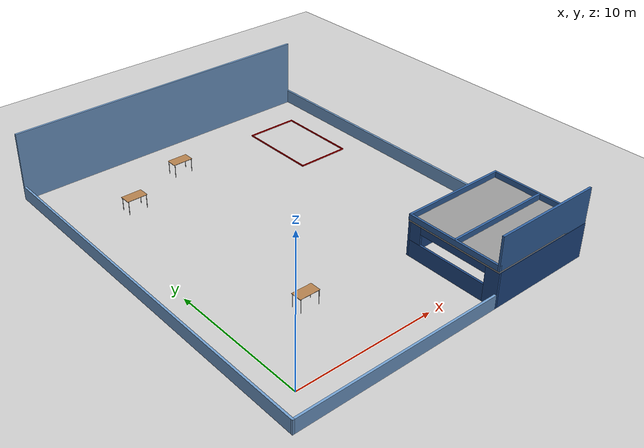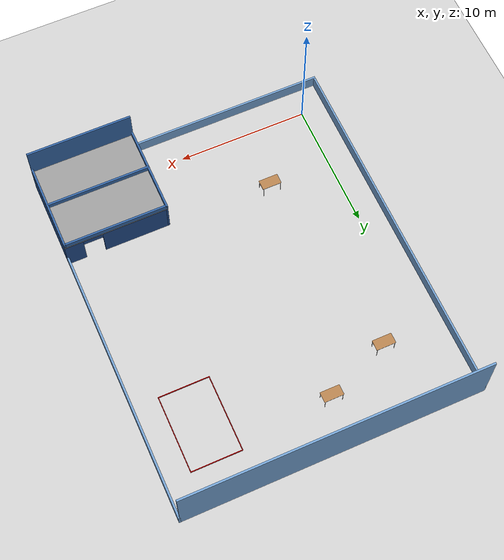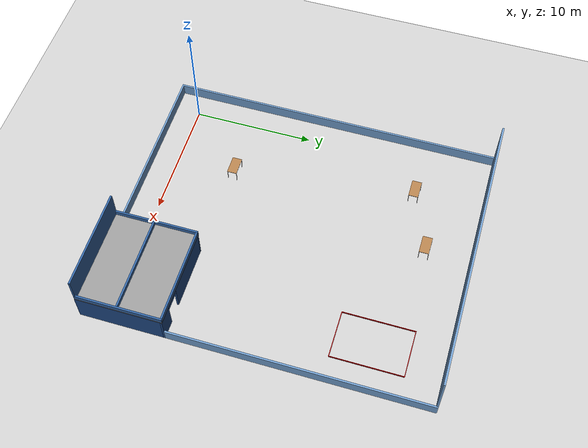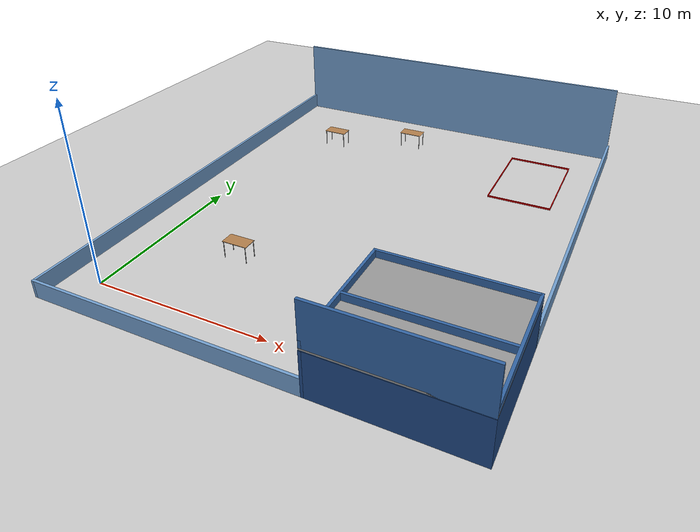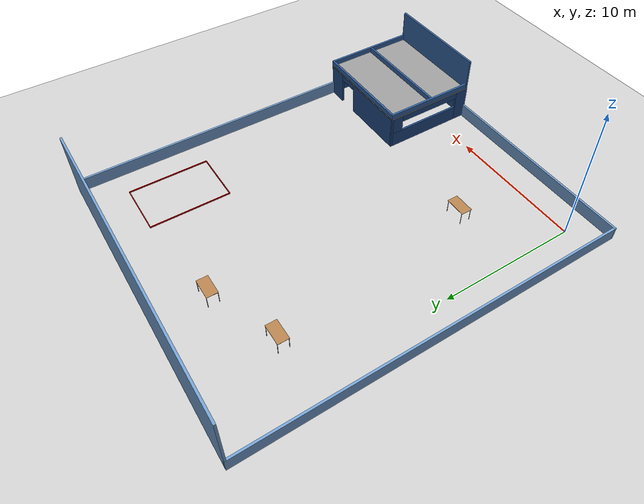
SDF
<sdf version="1.7">
 <world name="lps_sim">
  <light name="sun" type="directional">
   <pose>0 0 10 0 -0 0</pose>
   <diffuse>0.8 0.8 0.8 1</diffuse>
   <specular>0.2 0.2 0.2 1</specular>
   <attenuation>
    <range>1000</range>
    <constant>0.9</constant>
    <linear>0.01</linear>
    <quadratic>0.001</quadratic>
   </attenuation>
   <direction>-0.5 0.1 -0.9</direction>
   <spot><inner_angle>0</inner_angle><outer_angle>0</outer_angle><falloff>0</falloff></spot>
  </light>
  <model name="ground_plane">
   <static>1</static>
   <link name="link">
    <collision name="collision">
     <geometry><plane><normal>0 0 1</normal><size>100 100</size></plane></geometry>
     <surface>
      <contact><collide_bitmask>65535</collide_bitmask></contact>
      <friction><ode><mu>100</mu><mu2>50</mu2></ode></friction>
     </surface>
    </collision>
    <visual name="visual">
     <cast_shadows>0</cast_shadows>
     <geometry><plane><normal>0 0 1</normal><size>100 100</size></plane></geometry>
     <material>
      <script><uri>file://media/materials/scripts/gazebo.material</uri><name>Gazebo/Grey</name></script>
     </material>
    </visual>
   </link>
  </model>
  <gravity>0 0 -9.8</gravity>
  <magnetic_field>6e-06 2.3e-05 -4.2e-05</magnetic_field>
  <atmosphere type="adiabatic"/>
  <physics type="ode">
   <max_step_size>0.001</max_step_size>
   <real_time_factor>1</real_time_factor>
   <real_time_update_rate>1000</real_time_update_rate>
  </physics>
  <scene><ambient>0.4 0.4 0.4 1</ambient><background>0.7 0.7 0.7 1</background><shadows>1</shadows></scene>
  <spherical_coordinates>
   <surface_model>EARTH_WGS84</surface_model>
   <latitude_deg>0</latitude_deg>
   <longitude_deg>0</longitude_deg>
   <elevation>0</elevation>
   <heading_deg>0</heading_deg>
  </spherical_coordinates>
  <model name="masterarbeit">
   <pose>9.5 11.8 0 0 -0 0</pose>
   <link name="Floor_5">
    <collision name="Floor_5_Collision">
     <geometry><box><size>8.00045 7.00101 0.1</size></box></geometry>
     <pose>0 0 0.05 0 -0 0</pose>
    </collision>
    <visual name="Floor_5_Visual">
     <pose>0 0 0.05 0 -0 0</pose>
     <geometry><box><size>8.00045 7.00101 0.1</size></box></geometry>
     <material>
      <script><uri>file://media/materials/scripts/gazebo.material</uri><name>Gazebo/Grey</name></script>
      <ambient>0.933333 0.933333 0.92549 1</ambient>
     </material>
     <meta><layer>1</layer></meta>
    </visual>
    <pose>7.54978 -10.4693 2.5 0 -0 0</pose>
   </link>
   <link name="Wall_41">
    <collision name="Wall_41_Collision">
     <geometry><box><size>8 0.15 2.5</size></box></geometry>
     <pose>0 0 1.25 0 -0 0</pose>
    </collision>
    <visual name="Wall_41_Visual">
     <pose>0 0 1.25 0 -0 0</pose>
     <geometry><box><size>8 0.15 2.5</size></box></geometry>
     <material>
      <script><uri>file://media/materials/scripts/gazebo.material</uri><name>Gazebo/Grey</name></script>
      <ambient>0.12549 0.290196 0.529412 1</ambient>
     </material>
     <meta><layer>0</layer></meta>
    </visual>
    <pose>7.55 -13.925 0 0 -0 3.14154</pose>
   </link>
   <link name="Wall_42">
    <pose>3.625 -10.5 0 0 -0 1.57073</pose>
    <visual name="Wall_42_Visual_0">
     <pose>-2.99393 0 1.25 0 -0 0</pose>
     <geometry><box><size>1.01214 0.15 2.5</size></box></geometry>
     <material>
      <script><uri>file://media/materials/scripts/gazebo.material</uri><name>Gazebo/Grey</name></script>
      <ambient>0.12549 0.290196 0.529412 1</ambient>
     </material>
     <meta><layer>0</layer></meta>
    </visual>
    <collision name="Wall_42_Collision_0">
     <geometry><box><size>1.01214 0.15 2.5</size></box></geometry>
     <pose>-2.99393 0 1.25 0 -0 0</pose>
    </collision>
    <visual name="Wall_42_Visual_1">
     <pose>0.506069 0 0.6 0 -0 0</pose>
     <geometry><box><size>5.98786 0.15 1.2</size></box></geometry>
     <material>
      <script><uri>file://media/materials/scripts/gazebo.material</uri><name>Gazebo/Grey</name></script>
      <ambient>0.12549 0.290196 0.529412 1</ambient>
     </material>
     <meta><layer>0</layer></meta>
    </visual>
    <collision name="Wall_42_Collision_1">
     <geometry><box><size>5.98786 0.15 1.2</size></box></geometry>
     <pose>0.506069 0 0.6 0 -0 0</pose>
    </collision>
    <visual name="Wall_42_Visual_2">
     <pose>3.00607 0 1.85 0 -0 0</pose>
     <geometry><box><size>0.987862 0.15 1.3</size></box></geometry>
     <material>
      <script><uri>file://media/materials/scripts/gazebo.material</uri><name>Gazebo/Grey</name></script>
      <ambient>0.12549 0.290196 0.529412 1</ambient>
     </material>
     <meta><layer>0</layer></meta>
    </visual>
    <collision name="Wall_42_Collision_2">
     <geometry><box><size>0.987862 0.15 1.3</size></box></geometry>
     <pose>3.00607 0 1.85 0 -0 0</pose>
    </collision>
    <visual name="Wall_42_Visual_3">
     <pose>0.012138 0 2.25 0 -0 0</pose>
     <geometry><box><size>5 0.15 0.5</size></box></geometry>
     <material>
      <script><uri>file://media/materials/scripts/gazebo.material</uri><name>Gazebo/Grey</name></script>
      <ambient>0.12549 0.290196 0.529412 1</ambient>
     </material>
     <meta><layer>0</layer></meta>
    </visual>
    <collision name="Wall_42_Collision_3">
     <geometry><box><size>5 0.15 0.5</size></box></geometry>
     <pose>0.012138 0 2.25 0 -0 0</pose>
    </collision>
   </link>
   <link name="Wall_43">
    <pose>7.55 -7.075 0 0 -0 5.1e-05</pose>
    <visual name="Wall_43_Visual_0">
     <pose>-1.46715 0 1.25 0 -0 0</pose>
     <geometry><box><size>5.0657 0.15 2.5</size></box></geometry>
     <material>
      <script><uri>file://media/materials/scripts/gazebo.material</uri><name>Gazebo/Grey</name></script>
      <ambient>0.12549 0.290196 0.529412 1</ambient>
     </material>
     <meta><layer>0</layer></meta>
    </visual>
    <collision name="Wall_43_Collision_0">
     <geometry><box><size>5.0657 0.15 2.5</size></box></geometry>
     <pose>-1.46715 0 1.25 0 -0 0</pose>
    </collision>
    <visual name="Wall_43_Visual_1">
     <pose>3.28285 0 1.25 0 -0 0</pose>
     <geometry><box><size>1.4343 0.15 2.5</size></box></geometry>
     <material>
      <script><uri>file://media/materials/scripts/gazebo.material</uri><name>Gazebo/Grey</name></script>
      <ambient>0.12549 0.290196 0.529412 1</ambient>
     </material>
     <meta><layer>0</layer></meta>
    </visual>
    <collision name="Wall_43_Collision_1">
     <geometry><box><size>1.4343 0.15 2.5</size></box></geometry>
     <pose>3.28285 0 1.25 0 -0 0</pose>
    </collision>
    <visual name="Wall_43_Visual_2">
     <pose>1.8157 0 2.25 0 -0 0</pose>
     <geometry><box><size>1.5 0.15 0.5</size></box></geometry>
     <material>
      <script><uri>file://media/materials/scripts/gazebo.material</uri><name>Gazebo/Grey</name></script>
      <ambient>0.12549 0.290196 0.529412 1</ambient>
     </material>
     <meta><layer>0</layer></meta>
    </visual>
    <collision name="Wall_43_Collision_2">
     <geometry><box><size>1.5 0.15 0.5</size></box></geometry>
     <pose>1.8157 0 2.25 0 -0 0</pose>
    </collision>
   </link>
   <link name="Wall_44">
    <collision name="Wall_44_Collision">
     <geometry><box><size>7 0.15 2.5</size></box></geometry>
     <pose>0 0 1.25 0 -0 0</pose>
    </collision>
    <visual name="Wall_44_Visual">
     <pose>0 0 1.25 0 -0 0</pose>
     <geometry><box><size>7 0.15 2.5</size></box></geometry>
     <material>
      <script><uri>file://media/materials/scripts/gazebo.material</uri><name>Gazebo/Grey</name></script>
      <ambient>0.12549 0.290196 0.529412 1</ambient>
     </material>
     <meta><layer>0</layer></meta>
    </visual>
    <pose>11.475 -10.5 0 0 -0 -1.57073</pose>
   </link>
   <link name="Wall_46">
    <collision name="Wall_46_Collision">
     <geometry><box><size>8 0.15 2.5</size></box></geometry>
     <pose>0 0 1.25 0 -0 0</pose>
    </collision>
    <visual name="Wall_46_Visual">
     <pose>0 0 1.25 0 -0 0</pose>
     <geometry><box><size>8 0.15 2.5</size></box></geometry>
     <material>
      <script><uri>file://media/materials/scripts/gazebo.material</uri><name>Gazebo/Grey</name></script>
      <ambient>0.203922 0.396078 0.643137 1</ambient>
     </material>
     <meta><layer>1</layer></meta>
    </visual>
    <pose>7.54978 -13.8948 2.5 0 -0 3.14159</pose>
   </link>
   <link name="Wall_47">
    <collision name="Wall_47_Collision">
     <geometry><box><size>7.001 0.15 0.5</size></box></geometry>
     <pose>0 0 0.25 0 -0 0</pose>
    </collision>
    <visual name="Wall_47_Visual">
     <pose>0 0 0.25 0 -0 0</pose>
     <geometry><box><size>7.001 0.15 0.5</size></box></geometry>
     <material>
      <script><uri>file://media/materials/scripts/gazebo.material</uri><name>Gazebo/Grey</name></script>
      <ambient>0.203922 0.396078 0.643137 1</ambient>
     </material>
     <meta><layer>1</layer></meta>
    </visual>
    <pose>3.62478 -10.4693 2.5 0 -0 1.5708</pose>
   </link>
   <link name="Wall_48">
    <collision name="Wall_48_Collision">
     <geometry><box><size>8 0.15 0.5</size></box></geometry>
     <pose>0 0 0.25 0 -0 0</pose>
    </collision>
    <visual name="Wall_48_Visual">
     <pose>0 0 0.25 0 -0 0</pose>
     <geometry><box><size>8 0.15 0.5</size></box></geometry>
     <material>
      <script><uri>file://media/materials/scripts/gazebo.material</uri><name>Gazebo/Grey</name></script>
      <ambient>0.203922 0.396078 0.643137 1</ambient>
     </material>
     <meta><layer>1</layer></meta>
    </visual>
    <pose>7.54978 -7.0438 2.5 0 -0 0</pose>
   </link>
   <link name="Wall_49">
    <collision name="Wall_49_Collision">
     <geometry><box><size>7.001 0.15 0.5</size></box></geometry>
     <pose>0 0 0.25 0 -0 0</pose>
    </collision>
    <visual name="Wall_49_Visual">
     <pose>0 0 0.25 0 -0 0</pose>
     <geometry><box><size>7.001 0.15 0.5</size></box></geometry>
     <material>
      <script><uri>file://media/materials/scripts/gazebo.material</uri><name>Gazebo/Grey</name></script>
      <ambient>0.203922 0.396078 0.643137 1</ambient>
     </material>
     <meta><layer>1</layer></meta>
    </visual>
    <pose>11.4748 -10.4693 2.5 0 -0 -1.5708</pose>
   </link>
   <link name="Wall_50">
    <collision name="Wall_50_Collision">
     <geometry><box><size>7.85 0.15 0.5</size></box></geometry>
     <pose>0 0 0.25 0 -0 0</pose>
    </collision>
    <visual name="Wall_50_Visual">
     <pose>0 0 0.25 0 -0 0</pose>
     <geometry><box><size>7.85 0.15 0.5</size></box></geometry>
     <material>
      <script><uri>file://media/materials/scripts/gazebo.material</uri><name>Gazebo/Grey</name></script>
      <ambient>0.203922 0.396078 0.643137 1</ambient>
     </material>
     <meta><layer>1</layer></meta>
    </visual>
    <pose>7.49578 -10.5818 2.5 0 -0 0</pose>
   </link>
   <link name="Wall_57">
    <collision name="Wall_57_Collision">
     <geometry><box><size>15.25 0.15 1</size></box></geometry>
     <pose>0 0 0.5 0 -0 0</pose>
    </collision>
    <visual name="Wall_57_Visual">
     <pose>0 0 0.5 0 -0 0</pose>
     <geometry><box><size>15.25 0.15 1</size></box></geometry>
     <material>
      <script><uri>file://media/materials/scripts/gazebo.material</uri><name>Gazebo/Grey</name></script>
      <ambient>0.447059 0.623529 0.811765 1</ambient>
     </material>
     <meta><layer>0</layer></meta>
    </visual>
    <pose>-3.92522 -13.9248 0 0 -0 3.14159</pose>
   </link>
   <link name="Wall_58">
    <collision name="Wall_58_Collision">
     <geometry><box><size>28 0.15 1</size></box></geometry>
     <pose>0 0 0.5 0 -0 0</pose>
    </collision>
    <visual name="Wall_58_Visual">
     <pose>0 0 0.5 0 -0 0</pose>
     <geometry><box><size>28 0.15 1</size></box></geometry>
     <material>
      <script><uri>file://media/materials/scripts/gazebo.material</uri><name>Gazebo/Grey</name></script>
      <ambient>0.447059 0.623529 0.811765 1</ambient>
     </material>
     <meta><layer>0</layer></meta>
    </visual>
    <pose>-11.4752 0.000201 0 0 -0 1.5708</pose>
   </link>
   <link name="Wall_60">
    <collision name="Wall_60_Collision">
     <geometry><box><size>21.15 0.15 1</size></box></geometry>
     <pose>0 0 0.5 0 -0 0</pose>
    </collision>
    <visual name="Wall_60_Visual">
     <pose>0 0 0.5 0 -0 0</pose>
     <geometry><box><size>21.15 0.15 1</size></box></geometry>
     <material>
      <script><uri>file://media/materials/scripts/gazebo.material</uri><name>Gazebo/Grey</name></script>
      <ambient>0.447059 0.623529 0.811765 1</ambient>
     </material>
     <meta><layer>0</layer></meta>
    </visual>
    <pose>11.4748 3.4252 0 0 -0 1.5708</pose>
   </link>
   <link name="Wall_63">
    <collision name="Wall_63_Collision">
     <geometry><box><size>23 0.15 5</size></box></geometry>
     <pose>0 0 2.5 0 -0 0</pose>
    </collision>
    <visual name="Wall_63_Visual">
     <pose>0 0 2.5 0 -0 0</pose>
     <geometry><box><size>23 0.15 5</size></box></geometry>
     <material>
      <script><uri>file://media/materials/scripts/gazebo.material</uri><name>Gazebo/Grey</name></script>
      <ambient>0.447059 0.623529 0.811765 1</ambient>
     </material>
     <meta><layer>0</layer></meta>
    </visual>
    <pose>-0.050222 13.9252 0 0 -0 0</pose>
   </link>
   <static>1</static>
  </model>
  <model name="table">
   <static>1</static>
   <link name="link">
    <collision name="surface">
     <pose>0 0 1 0 -0 0</pose>
     <geometry><box><size>1.5 0.8 0.03</size></box></geometry>
     <surface><friction><ode><mu>0.6</mu><mu2>0.6</mu2></ode></friction></surface>
    </collision>
    <visual name="visual1">
     <pose>0 0 1 0 -0 0</pose>
     <geometry><box><size>1.5 0.8 0.03</size></box></geometry>
     <material>
      <script><uri>file://media/materials/scripts/gazebo.material</uri><name>Gazebo/Wood</name></script>
     </material>
    </visual>
    <collision name="front_left_leg">
     <pose>0.68 0.38 0.5 0 -0 0</pose>
     <geometry><cylinder><radius>0.02</radius><length>1</length></cylinder></geometry>
    </collision>
    <visual name="front_left_leg">
     <pose>0.68 0.38 0.5 0 -0 0</pose>
     <geometry><cylinder><radius>0.02</radius><length>1</length></cylinder></geometry>
     <material>
      <script><uri>file://media/materials/scripts/gazebo.material</uri><name>Gazebo/Grey</name></script>
     </material>
    </visual>
    <collision name="front_right_leg">
     <pose>0.68 -0.38 0.5 0 -0 0</pose>
     <geometry><cylinder><radius>0.02</radius><length>1</length></cylinder></geometry>
    </collision>
    <visual name="front_right_leg">
     <pose>0.68 -0.38 0.5 0 -0 0</pose>
     <geometry><cylinder><radius>0.02</radius><length>1</length></cylinder></geometry>
     <material>
      <script><uri>file://media/materials/scripts/gazebo.material</uri><name>Gazebo/Grey</name></script>
     </material>
    </visual>
    <collision name="back_right_leg">
     <pose>-0.68 -0.38 0.5 0 -0 0</pose>
     <geometry><cylinder><radius>0.02</radius><length>1</length></cylinder></geometry>
    </collision>
    <visual name="back_right_leg">
     <pose>-0.68 -0.38 0.5 0 -0 0</pose>
     <geometry><cylinder><radius>0.02</radius><length>1</length></cylinder></geometry>
     <material>
      <script><uri>file://media/materials/scripts/gazebo.material</uri><name>Gazebo/Grey</name></script>
     </material>
    </visual>
    <collision name="back_left_leg">
     <pose>-0.68 0.38 0.5 0 -0 0</pose>
     <geometry><cylinder><radius>0.02</radius><length>1</length></cylinder></geometry>
    </collision>
    <visual name="back_left_leg">
     <pose>-0.68 0.38 0.5 0 -0 0</pose>
     <geometry><cylinder><radius>0.02</radius><length>1</length></cylinder></geometry>
     <material>
      <script><uri>file://media/materials/scripts/gazebo.material</uri><name>Gazebo/Grey</name></script>
     </material>
    </visual>
   </link>
   <pose>5 5 0 0 -0 0</pose>
  </model>
  <model name="table_clone">
   <static>1</static>
   <link name="link">
    <collision name="surface">
     <pose>0 0 1 0 -0 0</pose>
     <geometry><box><size>1.5 0.8 0.03</size></box></geometry>
     <surface><friction><ode><mu>0.6</mu><mu2>0.6</mu2></ode></friction></surface>
    </collision>
    <visual name="visual1">
     <pose>0 0 1 0 -0 0</pose>
     <geometry><box><size>1.5 0.8 0.03</size></box></geometry>
     <material>
      <script><uri>file://media/materials/scripts/gazebo.material</uri><name>Gazebo/Wood</name></script>
     </material>
    </visual>
    <collision name="front_left_leg">
     <pose>0.68 0.38 0.5 0 -0 0</pose>
     <geometry><cylinder><radius>0.02</radius><length>1</length></cylinder></geometry>
    </collision>
    <visual name="front_left_leg">
     <pose>0.68 0.38 0.5 0 -0 0</pose>
     <geometry><cylinder><radius>0.02</radius><length>1</length></cylinder></geometry>
     <material>
      <script><uri>file://media/materials/scripts/gazebo.material</uri><name>Gazebo/Grey</name></script>
     </material>
    </visual>
    <collision name="front_right_leg">
     <pose>0.68 -0.38 0.5 0 -0 0</pose>
     <geometry><cylinder><radius>0.02</radius><length>1</length></cylinder></geometry>
    </collision>
    <visual name="front_right_leg">
     <pose>0.68 -0.38 0.5 0 -0 0</pose>
     <geometry><cylinder><radius>0.02</radius><length>1</length></cylinder></geometry>
     <material>
      <script><uri>file://media/materials/scripts/gazebo.material</uri><name>Gazebo/Grey</name></script>
     </material>
    </visual>
    <collision name="back_right_leg">
     <pose>-0.68 -0.38 0.5 0 -0 0</pose>
     <geometry><cylinder><radius>0.02</radius><length>1</length></cylinder></geometry>
    </collision>
    <visual name="back_right_leg">
     <pose>-0.68 -0.38 0.5 0 -0 0</pose>
     <geometry><cylinder><radius>0.02</radius><length>1</length></cylinder></geometry>
     <material>
      <script><uri>file://media/materials/scripts/gazebo.material</uri><name>Gazebo/Grey</name></script>
     </material>
    </visual>
    <collision name="back_left_leg">
     <pose>-0.68 0.38 0.5 0 -0 0</pose>
     <geometry><cylinder><radius>0.02</radius><length>1</length></cylinder></geometry>
    </collision>
    <visual name="back_left_leg">
     <pose>-0.68 0.38 0.5 0 -0 0</pose>
     <geometry><cylinder><radius>0.02</radius><length>1</length></cylinder></geometry>
     <material>
      <script><uri>file://media/materials/scripts/gazebo.material</uri><name>Gazebo/Grey</name></script>
     </material>
    </visual>
   </link>
   <pose>3 20 0 0 -0 0</pose>
  </model>
  <model name="table_clone_clone">
   <static>1</static>
   <link name="link">
    <collision name="surface">
     <pose>0 0 1 0 -0 0</pose>
     <geometry><box><size>1.5 0.8 0.03</size></box></geometry>
     <surface><friction><ode><mu>0.6</mu><mu2>0.6</mu2></ode></friction></surface>
    </collision>
    <visual name="visual1">
     <pose>0 0 1 0 -0 0</pose>
     <geometry><box><size>1.5 0.8 0.03</size></box></geometry>
     <material>
      <script><uri>file://media/materials/scripts/gazebo.material</uri><name>Gazebo/Wood</name></script>
     </material>
    </visual>
    <collision name="front_left_leg">
     <pose>0.68 0.38 0.5 0 -0 0</pose>
     <geometry><cylinder><radius>0.02</radius><length>1</length></cylinder></geometry>
    </collision>
    <visual name="front_left_leg">
     <pose>0.68 0.38 0.5 0 -0 0</pose>
     <geometry><cylinder><radius>0.02</radius><length>1</length></cylinder></geometry>
     <material>
      <script><uri>file://media/materials/scripts/gazebo.material</uri><name>Gazebo/Grey</name></script>
     </material>
    </visual>
    <collision name="front_right_leg">
     <pose>0.68 -0.38 0.5 0 -0 0</pose>
     <geometry><cylinder><radius>0.02</radius><length>1</length></cylinder></geometry>
    </collision>
    <visual name="front_right_leg">
     <pose>0.68 -0.38 0.5 0 -0 0</pose>
     <geometry><cylinder><radius>0.02</radius><length>1</length></cylinder></geometry>
     <material>
      <script><uri>file://media/materials/scripts/gazebo.material</uri><name>Gazebo/Grey</name></script>
     </material>
    </visual>
    <collision name="back_right_leg">
     <pose>-0.68 -0.38 0.5 0 -0 0</pose>
     <geometry><cylinder><radius>0.02</radius><length>1</length></cylinder></geometry>
    </collision>
    <visual name="back_right_leg">
     <pose>-0.68 -0.38 0.5 0 -0 0</pose>
     <geometry><cylinder><radius>0.02</radius><length>1</length></cylinder></geometry>
     <material>
      <script><uri>file://media/materials/scripts/gazebo.material</uri><name>Gazebo/Grey</name></script>
     </material>
    </visual>
    <collision name="back_left_leg">
     <pose>-0.68 0.38 0.5 0 -0 0</pose>
     <geometry><cylinder><radius>0.02</radius><length>1</length></cylinder></geometry>
    </collision>
    <visual name="back_left_leg">
     <pose>-0.68 0.38 0.5 0 -0 0</pose>
     <geometry><cylinder><radius>0.02</radius><length>1</length></cylinder></geometry>
     <material>
      <script><uri>file://media/materials/scripts/gazebo.material</uri><name>Gazebo/Grey</name></script>
     </material>
    </visual>
   </link>
   <pose>8 22 0 0 -0 0</pose>
  </model>
  <model name="cage">
   <pose>17 20 0 0 -0 1.5708</pose>
   <link name="Wall_1">
    <collision name="Wall_1_Collision">
     <geometry><box><size>3.9 0.05 0.1</size></box></geometry>
     <pose>0 0 0.05 0 -0 0</pose>
    </collision>
    <visual name="Wall_1_Visual">
     <pose>0 0 0.05 0 -0 0</pose>
     <geometry><box><size>3.9 0.05 0.1</size></box></geometry>
     <material>
      <script><uri>file://media/materials/scripts/gazebo.material</uri><name>Gazebo/Grey</name></script>
      <ambient>0.8 0 0 1</ambient>
     </material>
     <meta><layer>0</layer></meta>
    </visual>
    <pose>-2.925 -0.062 0 0 -0 -1.5708</pose>
   </link>
   <link name="Wall_2">
    <collision name="Wall_2_Collision">
     <geometry><box><size>5.9 0.05 0.1</size></box></geometry>
     <pose>0 0 0.05 0 -0 0</pose>
    </collision>
    <visual name="Wall_2_Visual">
     <pose>0 0 0.05 0 -0 0</pose>
     <geometry><box><size>5.9 0.05 0.1</size></box></geometry>
     <material>
      <script><uri>file://media/materials/scripts/gazebo.material</uri><name>Gazebo/Grey</name></script>
      <ambient>0.8 0 0 1</ambient>
     </material>
     <meta><layer>0</layer></meta>
    </visual>
    <pose>0 -1.987 0 0 -0 0</pose>
   </link>
   <link name="Wall_3">
    <collision name="Wall_3_Collision">
     <geometry><box><size>3.9 0.05 0.1</size></box></geometry>
     <pose>0 0 0.05 0 -0 0</pose>
    </collision>
    <visual name="Wall_3_Visual">
     <pose>0 0 0.05 0 -0 0</pose>
     <geometry><box><size>3.9 0.05 0.1</size></box></geometry>
     <material>
      <script><uri>file://media/materials/scripts/gazebo.material</uri><name>Gazebo/Grey</name></script>
      <ambient>0.8 0 0 1</ambient>
     </material>
     <meta><layer>0</layer></meta>
    </visual>
    <pose>2.925 -0.062 0 0 -0 1.5708</pose>
   </link>
   <link name="Wall_4">
    <collision name="Wall_4_Collision">
     <geometry><box><size>5.9 0.05 0.1</size></box></geometry>
     <pose>0 0 0.05 0 -0 0</pose>
    </collision>
    <visual name="Wall_4_Visual">
     <pose>0 0 0.05 0 -0 0</pose>
     <geometry><box><size>5.9 0.05 0.1</size></box></geometry>
     <material>
      <script><uri>file://media/materials/scripts/gazebo.material</uri><name>Gazebo/Grey</name></script>
      <ambient>0.8 0 0 1</ambient>
     </material>
     <meta><layer>0</layer></meta>
    </visual>
    <pose>0 1.863 0 0 -0 3.14159</pose>
   </link>
   <static>1</static>
  </model>
  <light name="user_spot_light_0" type="spot">
   <pose>17.2016 20.1328 1 0 -0 0</pose>
   <diffuse>0.5 0.5 0.5 1</diffuse>
   <specular>0.1 0.1 0.1 1</specular>
   <direction>0 0 -1</direction>
   <attenuation>
    <range>20</range>
    <constant>0.5</constant>
    <linear>0.01</linear>
    <quadratic>0.001</quadratic>
   </attenuation>
   <cast_shadows>0</cast_shadows>
   <spot><inner_angle>0.6</inner_angle><outer_angle>1</outer_angle><falloff>1</falloff></spot>
  </light>
 </world>
</sdf>
